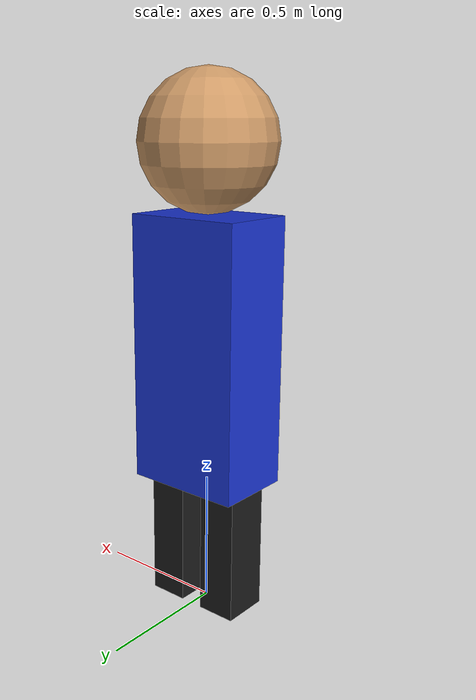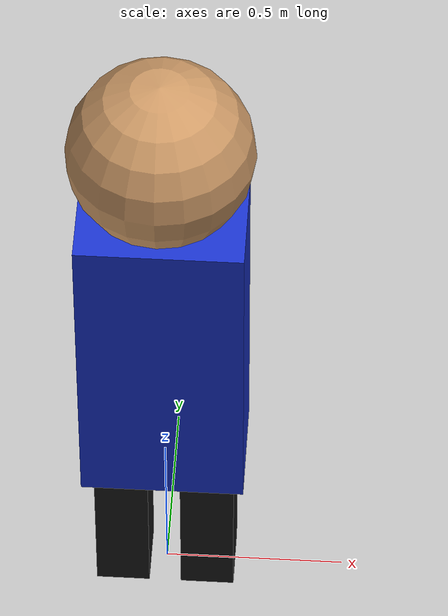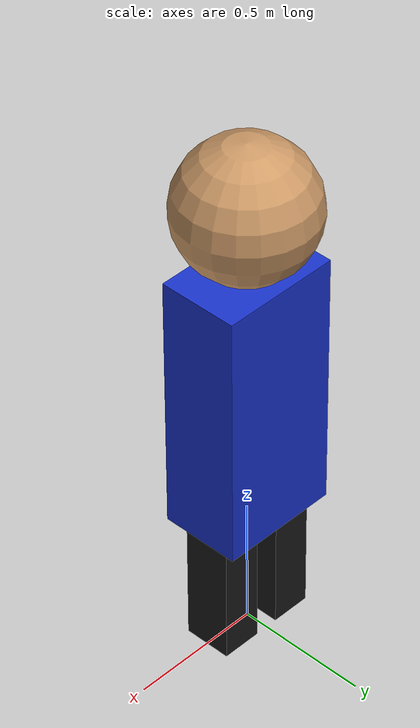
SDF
<?xml version="1.0" ?>
<sdf version="1.9">
  <model name="rescue_person">

    <static>true</static>

    <!-- BODY -->
    <link name="body">
      <pose>0 0 1.0 0 0 0</pose>

      <inertial>
        <mass>10</mass>
        <inertia>
          <ixx>1</ixx>
          <iyy>1</iyy>
          <izz>1</izz>
        </inertia>
      </inertial>

      <collision name="body_collision">
        <geometry>
          <box>
            <size>0.45 0.30 1.0</size>
          </box>
        </geometry>
      </collision>

      <visual name="body_visual">
        <geometry>
          <box>
            <size>0.45 0.30 1.0</size>
          </box>
        </geometry>

        <material>
          <ambient>0.1 0.2 0.8 1</ambient>
          <diffuse>0.1 0.2 0.8 1</diffuse>
        </material>
      </visual>
    </link>

    <!-- HEAD -->
    <link name="head">
      <pose>0 0 1.75 0 0 0</pose>

      <inertial>
        <mass>3</mass>
        <inertia>
          <ixx>0.1</ixx>
          <iyy>0.1</iyy>
          <izz>0.1</izz>
        </inertia>
      </inertial>

      <collision name="head_collision">
        <geometry>
          <sphere>
            <radius>0.25</radius>
          </sphere>
        </geometry>
      </collision>

      <visual name="head_visual">
        <geometry>
          <sphere>
            <radius>0.25</radius>
          </sphere>
        </geometry>

        <material>
          <ambient>0.8 0.6 0.4 1</ambient>
          <diffuse>0.8 0.6 0.4 1</diffuse>
        </material>
      </visual>
    </link>

    <!-- LEFT LEG -->
    <link name="left_leg">
      <pose>-0.12 0 0.25 0 0 0</pose>

      <collision name="collision">
        <geometry>
          <box>
            <size>0.15 0.18 0.5</size>
          </box>
        </geometry>
      </collision>

      <visual name="visual">
        <geometry>
          <box>
            <size>0.15 0.18 0.5</size>
          </box>
        </geometry>

        <material>
          <ambient>0.1 0.1 0.1 1</ambient>
          <diffuse>0.1 0.1 0.1 1</diffuse>
        </material>
      </visual>
    </link>

    <!-- RIGHT LEG -->
    <link name="right_leg">
      <pose>0.12 0 0.25 0 0 0</pose>

      <collision name="collision">
        <geometry>
          <box>
            <size>0.15 0.18 0.5</size>
          </box>
        </geometry>
      </collision>

      <visual name="visual">
        <geometry>
          <box>
            <size>0.15 0.18 0.5</size>
          </box>
        </geometry>

        <material>
          <ambient>0.1 0.1 0.1 1</ambient>
          <diffuse>0.1 0.1 0.1 1</diffuse>
        </material>
      </visual>
    </link>

  </model>
</sdf>
